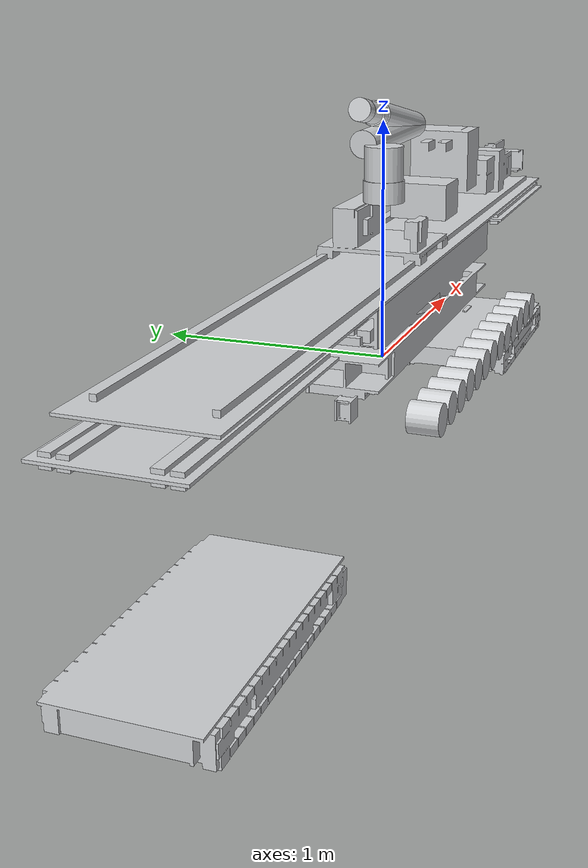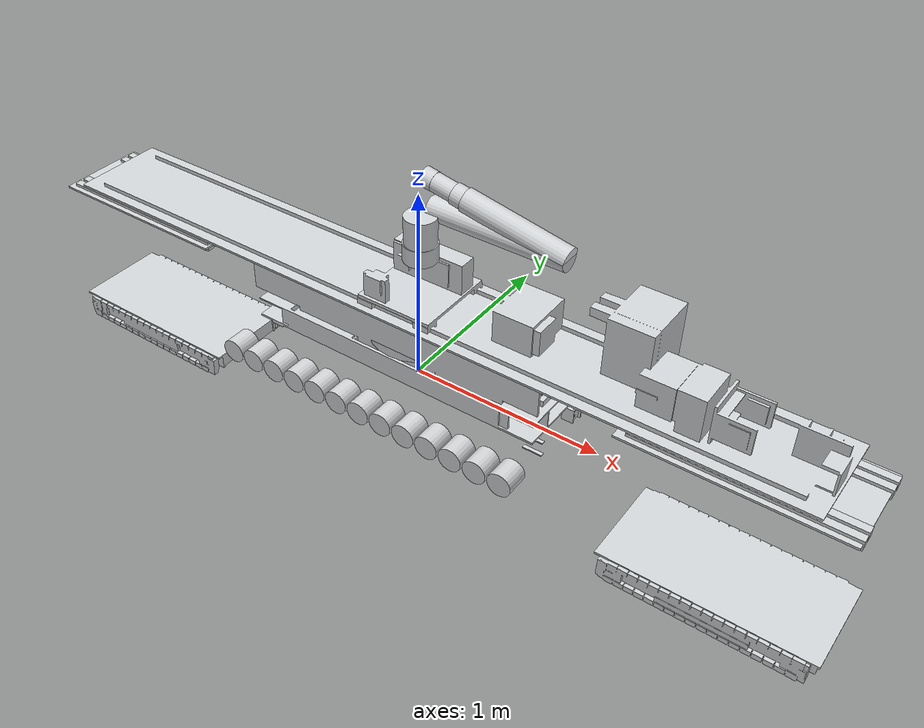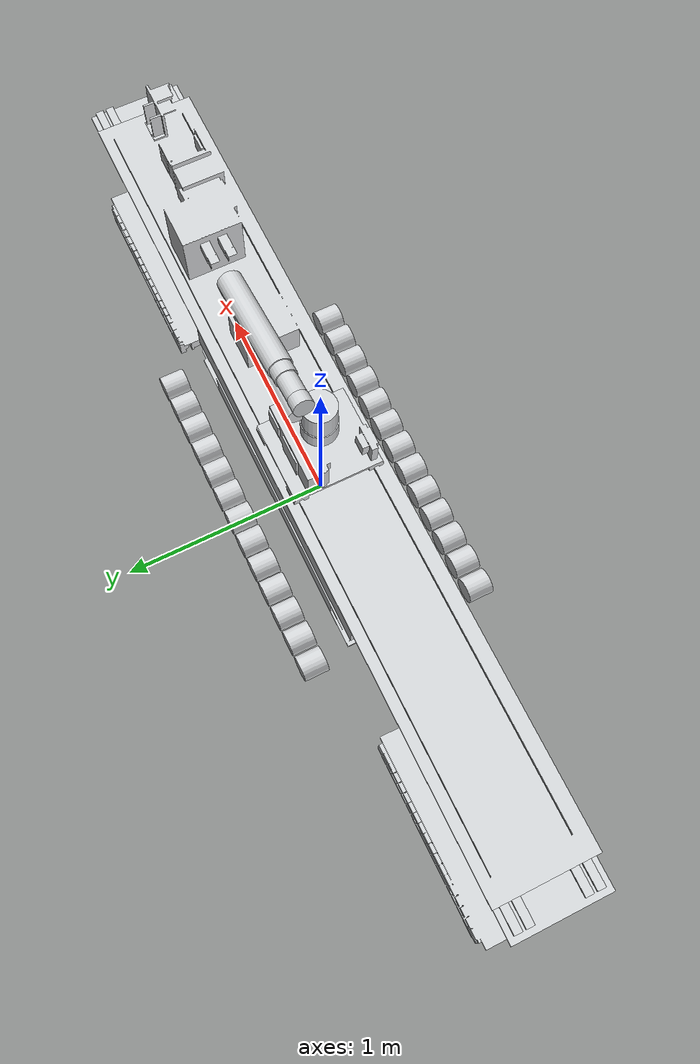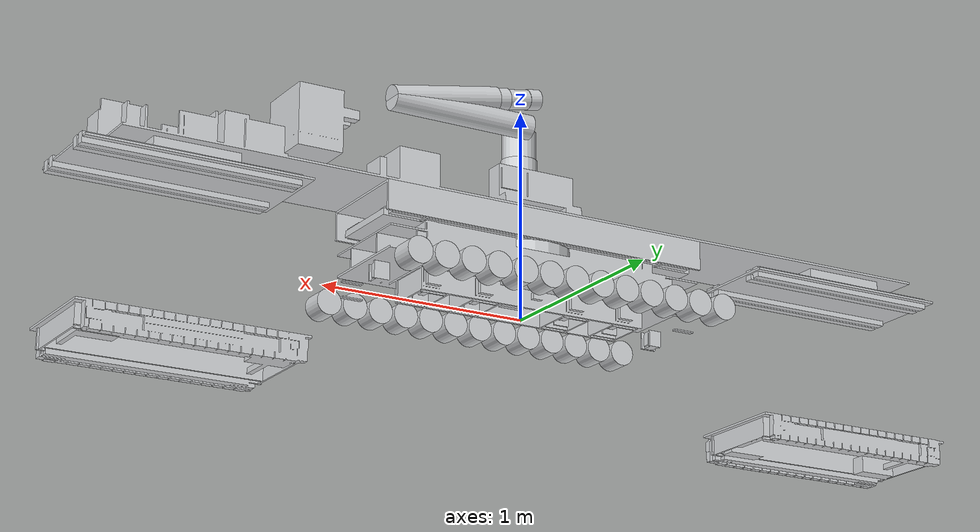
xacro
<?xml version="1.0"?>
<robot xmlns:xacro="http://www.ros.org/wiki/xacro" name="crawler">

  <xacro:include filename="$(find sp_description)/urdf/params.xacro"/>
  <xacro:include filename="$(find sp_description)/urdf/crawler.gazebo.xacro"/>

  <xacro:arg name="arm_fixed" default="true"/>
  <xacro:property name="arm_fixed" value="$(arg arm_fixed)"/>

  <xacro:property name="mesh_dir" value="package://sp_description/meshes"/>

  <!-- ═══════════ 관성 매크로 ═══════════ -->
  <xacro:macro name="box_inertia" params="m x y z ox:=0 oy:=0 oz:=0">
    <inertial>
      <origin xyz="${ox} ${oy} ${oz}"/>
      <mass value="${m}"/>
      <inertia ixx="${m*(y*y+z*z)/12.0}" ixy="0" ixz="0"
               iyy="${m*(x*x+z*z)/12.0}" iyz="0"
               izz="${m*(x*x+y*y)/12.0}"/>
    </inertial>
  </xacro:macro>

  <!-- oz: 링크 원점에서 원통 **중심**까지의 거리. 팔 링크처럼 원점이 관절(끝)에
       있는 경우 반드시 줘야 무게중심이 맞는다. 바퀴·롤러는 원점이 이미 중심이라 0. -->
  <xacro:macro name="cylinder_inertia" params="m r h oz:=0">
    <inertial>
      <origin xyz="0 0 ${oz}"/>
      <mass value="${m}"/>
      <inertia ixx="${m*(3*r*r+h*h)/12.0}" ixy="0" ixz="0"
               iyy="${m*(3*r*r+h*h)/12.0}" iyz="0"
               izz="${m*r*r/2.0}"/>
    </inertial>
  </xacro:macro>

  <!-- 로봇 전체를 **밝은 회색 하나**로 통일한다.
       예전에는 부위별로 색을 나눴는데(강재/고무/FANUC 파랑), 형상 확인에는
       한 색이 오히려 낫다 — 색 경계가 아니라 실제 형상 경계가 보인다. -->
  <material name="light"><color rgba="0.82 0.83 0.84 1"/></material>

  <link name="base_footprint"/>

  <joint name="base_joint" type="fixed">
    <parent link="base_footprint"/>
    <child  link="base_link"/>
    <origin xyz="0 0 ${-wheel_unit_z0}" rpy="0 0 0"/>
  </joint>

  <link name="base_link">
    <visual>
      <geometry><mesh filename="${mesh_dir}/wheel_unit.stl"/></geometry>
      <material name="light"/>
    </visual>
    <!-- 충돌은 바퀴부 몸통 박스 하나. 접지는 구동륜이 맡는다.
         몸통은 통로(695) 안에 들어가고 론지 플랜지 위로 21 mm 떠 있다. -->
    <collision>
      <origin xyz="0 0 ${(wheel_unit_body_z0 + wheel_unit_z1)/2.0}"/>
      <geometry>
        <box size="${2*wheel_unit_x} ${2*wheel_unit_y}
                   ${wheel_unit_z1 - wheel_unit_body_z0}"/>
      </geometry>
    </collision>
    <xacro:box_inertia m="${wheel_unit_mass}" x="${2*wheel_unit_x}"
                       y="${2*wheel_unit_y}" z="${wheel_unit_z1 - wheel_unit_z0}"
                       oz="${(wheel_unit_z0 + wheel_unit_z1)/2.0}"/>
  </link>

  <xacro:macro name="drive_wheel" params="prefix ysign xoff">
    <link name="${prefix}_wheel_link">
      <visual>
        <origin rpy="${pi/2} 0 0"/>
        <geometry><cylinder radius="${wheel_radius}" length="${drive_width}"/></geometry>
        <material name="light"/>
      </visual>
      <collision>
        <origin rpy="${pi/2} 0 0"/>
        <geometry><cylinder radius="${wheel_radius}" length="${drive_width}"/></geometry>
      </collision>
      <xacro:cylinder_inertia m="${wheel_mass}" r="${wheel_radius}" h="${drive_width}"/>
    </link>

    <joint name="${prefix}_wheel_joint" type="continuous">
      <parent link="base_link"/>
      <child  link="${prefix}_wheel_link"/>
      <origin xyz="${xoff} ${ysign * drive_gauge / 2.0} ${axle_z}" rpy="0 0 0"/>
      <axis xyz="0 1 0"/>
    </joint>
  </xacro:macro>

  <xacro:macro name="drive_wheels" params="side ysign i">
    <xacro:if value="${i &lt; drive_wheel_n}">
      <xacro:drive_wheel prefix="${side}${i}" ysign="${ysign}"
                         xoff="${drive_wheel_x0 - i*drive_wheel_dx}"/>
      <xacro:drive_wheels side="${side}" ysign="${ysign}" i="${i+1}"/>
    </xacro:if>
  </xacro:macro>

  <xacro:drive_wheels side="l" ysign="1"  i="0"/>
  <xacro:drive_wheels side="r" ysign="-1" i="0"/>

  <!-- 바 하나 = 좌우 두 장 + 크로스튜브를 묶은 강체 하나.
       `off` 는 링크 원점에서 박스 중심까지의 거리 —
       원점이 좌끝이면 +L/2, 우끝이면 −L/2, 중간핀이면 0. -->
  <xacro:macro name="scissor_bar" params="name blen dy off ty tz">
    <link name="${name}">
      <visual>
        <origin xyz="${off} ${dy} 0"/>
        <geometry><box size="${blen} ${ty} ${tz}"/></geometry>
        <material name="light"/>
      </visual>
      <visual>
        <origin xyz="${off} ${-dy} 0"/>
        <geometry><box size="${blen} ${ty} ${tz}"/></geometry>
        <material name="light"/>
      </visual>
      <!-- 충돌체 없음: 하중을 받지 않는 종동체다. -->
      <xacro:box_inertia m="${scissor_bar_mass}" x="${blen}" y="${2*dy}"
                         z="${tz}" ox="${off}"/>
    </link>
  </xacro:macro>

  <xacro:macro name="scissor_stage" params="ns blen dy dy2 n i ty tz">
    <xacro:if value="${i &lt; n}">
      <!-- 주 체인 바: 짝수단 = A(좌끝 원점), 홀수단 = B(우끝 원점) -->
      <xacro:scissor_bar name="${ns}_m${i}" blen="${blen}" dy="${dy}" ty="${ty}" tz="${tz}"
                         off="${blen/2.0 if i%2==0 else -blen/2.0}"/>
      <joint name="${ns}_m${i}_scissor_joint" type="revolute">
        <parent link="${ns + '_root' if i == 0 else ns + '_m' + str(i-1)}"/>
        <child  link="${ns}_m${i}"/>
        <!-- 부모의 반대쪽 끝핀에 붙는다 (i=0 은 고정핀 그 자리) -->
        <origin xyz="${0 if i == 0 else (blen if i%2==1 else -blen)} 0 0"/>
        <axis xyz="0 ${-1 if i%2==0 else 1} 0"/>
        <limit lower="-0.05" upper="2.7" effort="500" velocity="3.0"/>
        <dynamics damping="0.2" friction="0.0"/>
      </joint>

      <!-- 짝 바: 주 체인 바의 중간핀에서 반대 방향으로 벌어진다.
           ⚠ y 열을 **안쪽(dy2)** 으로 뺀다. 같은 열에 두면 각도가 얕을 때
             교차점에서 두 바가 서로 파고들어 덩어리처럼 보인다. 실제 시저도
             안팎 두 열로 엇갈려 물린다. -->
      <xacro:scissor_bar name="${ns}_p${i}" blen="${blen}" dy="${dy2}" ty="${ty}" tz="${tz}" off="0"/>
      <joint name="${ns}_p${i}_scissor_joint" type="revolute">
        <parent link="${ns}_m${i}"/>
        <child  link="${ns}_p${i}"/>
        <origin xyz="${blen/2.0 if i%2==0 else -blen/2.0} 0 0"/>
        <axis xyz="0 ${1 if i%2==0 else -1} 0"/>
        <limit lower="-0.05" upper="2.7" effort="500" velocity="3.0"/>
        <dynamics damping="0.2" friction="0.0"/>
      </joint>

      <xacro:scissor_stage ns="${ns}" blen="${blen}" dy="${dy}" dy2="${dy2}" n="${n}" i="${i+1}" ty="${ty}" tz="${tz}"/>
    </xacro:if>
  </xacro:macro>

  <!-- 조립체 하나. xyz 는 **고정핀** 위치다 (스택은 여기서 위로 자란다). -->
  <!-- rpy 로 스택을 뒤집을 수 있다. "${pi} 0 0" 이면 아래로 자란다 —
       전후단부처럼 **고정된 윗부분에 매달려 아랫부분을 내리는** 배치에 쓴다. -->
  <xacro:macro name="scissor_stack" params="ns parent xyz blen dy dy2 n ty tz rpy:='0 0 0'">
    <link name="${ns}_root">
      <xacro:box_inertia m="0.05" x="0.03" y="0.03" z="0.03"/>
    </link>
    <joint name="${ns}_root_joint" type="fixed">
      <parent link="${parent}"/>
      <child  link="${ns}_root"/>
      <origin xyz="${xyz}" rpy="${rpy}"/>
    </joint>
    <xacro:scissor_stage ns="${ns}" blen="${blen}" dy="${dy}" dy2="${dy2}" n="${n}" i="0" ty="${ty}" tz="${tz}"/>
  </xacro:macro>

  <link name="body_turn_link">
    <!-- 턴테이블 디스크 -->
    <visual>
      <origin xyz="0 0 ${(body_turn_z0 + body_turn_z1)/2.0}"/>
      <geometry>
        <cylinder radius="${body_turn_r}" length="${body_turn_z1 - body_turn_z0}"/>
      </geometry>
      <material name="light"/>
    </visual>
    <!-- 회전 프레임 — 시저 하단 핀(x ±0.775)을 받는 빔.
         턴테이블 반경 0.24 로는 그 핀들을 받을 수 없어서 필요하다. -->
    <visual>
      <origin xyz="0 0 ${(body_turn_z1 + body_frame_z1)/2.0}"/>
      <geometry>
        <box size="${2*body_frame_x} ${2*body_frame_y} ${body_frame_z1 - body_turn_z1}"/>
      </geometry>
      <material name="light"/>
    </visual>
    <collision>
      <origin xyz="0 0 ${(body_turn_z0 + body_turn_z1)/2.0}"/>
      <geometry>
        <cylinder radius="${body_turn_r}" length="${body_turn_z1 - body_turn_z0}"/>
      </geometry>
    </collision>
    <xacro:box_inertia m="${body_turn_mass + body_frame_mass}"
                       x="${2*body_frame_x}" y="${2*body_frame_y}"
                       z="${body_frame_z1 - body_turn_z0}"
                       oz="${(body_turn_z0 + body_frame_z1)/2.0}"/>
  </link>

  <joint name="body_turn_joint" type="revolute">
    <parent link="base_link"/>
    <child  link="body_turn_link"/>
    <origin xyz="0 0 0" rpy="0 0 0"/>
    <axis xyz="0 0 1"/>
    <limit lower="${-pi}" upper="${pi}" effort="8000" velocity="${turn_vel}"/>
    <dynamics damping="${turn_damping}" friction="${turn_friction}"/>
  </joint>

  <!-- 몸체부(덱) — 메시는 상판 + 리니어 레일이다.
       리니어축·팔·전후단부가 전부 여기에 매달린다. -->
  <link name="body_link">
    <visual>
      <geometry><mesh filename="${mesh_dir}/deck.stl"/></geometry>
      <material name="light"/>
    </visual>
    <collision>
      <origin xyz="0 0 ${(deck_z0 + deck_z1)/2.0}"/>
      <geometry><box size="${2*deck_x} ${2*deck_y} ${deck_z1 - deck_z0}"/></geometry>
    </collision>
    <xacro:box_inertia m="${deck_mass}" x="${2*deck_x}" y="${2*deck_y}"
                       z="${deck_z1 - deck_z0}" oz="${(deck_z0 + deck_z1)/2.0}"/>
  </link>

  <joint name="body_lift_joint" type="prismatic">
    <parent link="body_turn_link"/>
    <child  link="body_link"/>
    <origin xyz="0 0 0" rpy="0 0 0"/>
    <axis xyz="0 0 1"/>
    <limit lower="0" upper="${body_lift_range}" effort="20000" velocity="0.2"/>
    <dynamics damping="2000.0" friction="200.0"/>
  </joint>

  <xacro:scissor_stack ns="body_sc" parent="body_turn_link"
                       xyz="${body_sc_x} 0 ${body_frame_z1}"
                       blen="${body_sc_len}" dy="${body_sc_dy}" dy2="${body_sc_dy2}"
                       n="${body_sc_n}" ty="${body_sc_ty}" tz="${body_sc_tz}"/>

  <!-- ═══════════ 리니어축 캐리지 ═══════════
       링크 원점 = 도면 자세에서의 슬라이더 4개 중심. q=0 이 **행정 중심**이다. -->
  <link name="carriage_link">
    <visual>
      <geometry><mesh filename="${mesh_dir}/carriage.stl"/></geometry>
      <material name="light"/>
    </visual>
    <collision>
      <origin xyz="${carriage_ctr_x - carriage_ref_x} 0
                   ${(carriage_z0 + carriage_z1)/2.0}"/>
      <geometry>
        <box size="${carriage_box_x} ${carriage_box_y} ${carriage_z1 - carriage_z0}"/>
      </geometry>
    </collision>
    <xacro:box_inertia m="${carriage_mass}" x="${carriage_box_x}" y="${carriage_box_y}"
                       z="${carriage_z1 - carriage_z0}"
                       ox="${carriage_ctr_x - carriage_ref_x}"
                       oz="${(carriage_z0 + carriage_z1)/2.0}"/>
  </link>

  <joint name="carriage_joint" type="prismatic">
    <parent link="body_link"/>
    <child  link="carriage_link"/>
    <origin xyz="${rail_center_x} 0 0" rpy="0 0 0"/>
    <axis xyz="1 0 0"/>
    <limit lower="${-rail_travel}" upper="${rail_travel}" effort="4000" velocity="0.5"/>
    <dynamics damping="200.0" friction="20.0"/>
  </joint>

  <xacro:macro name="arm_seg" params="name slen r m rpy:='0 0 0'">
    <link name="${name}">
      <visual>
        <origin xyz="0 0 ${slen/2.0}" rpy="${rpy}"/>
        <geometry><cylinder radius="${r}" length="${slen}"/></geometry>
        <material name="light"/>
      </visual>
      <xacro:if value="${arm_collision}">
        <collision>
          <origin xyz="0 0 ${slen/2.0}" rpy="${rpy}"/>
          <geometry><cylinder radius="${r}" length="${slen}"/></geometry>
        </collision>
      </xacro:if>
      <xacro:cylinder_inertia m="${m}" r="${r}" h="${slen}" oz="${slen/2.0}"/>
    </link>
  </xacro:macro>

  <!-- 팔 관절 하나. arm_fixed 면 **home 각도를 origin 에 구워 넣은 fixed** 로 낸다.
       ⚠ fixed 로 굳히면 /arm_jN 토픽이 사라진다. 자세를 바꾸려면 arm_fixed:=false. -->
  <xacro:macro name="arm_joint" params="name parent child xyz ax home lim eff vel damp fric">
    <xacro:if value="${arm_fixed}">
      <joint name="${name}" type="fixed">
        <parent link="${parent}"/>
        <child  link="${child}"/>
        <origin xyz="${xyz}"
                rpy="${'0 0 ' + str(home) if ax == 'z' else '0 ' + str(home) + ' 0'}"/>
      </joint>
    </xacro:if>
    <xacro:unless value="${arm_fixed}">
      <joint name="${name}" type="revolute">
        <parent link="${parent}"/>
        <child  link="${child}"/>
        <origin xyz="${xyz}"/>
        <axis xyz="${'0 0 1' if ax == 'z' else '0 1 0'}"/>
        <limit lower="${-lim}" upper="${lim}" effort="${eff}" velocity="${vel}"/>
        <dynamics damping="${damp}" friction="${fric}"/>
      </joint>
    </xacro:unless>
  </xacro:macro>

  <!-- 베이스: 캐리지 상면에 고정 -->
  <xacro:arm_seg name="arm_base_link" slen="${arm_base_h}" r="${arm_base_r}"
                 m="${arm_base_mass}"/>
  <joint name="arm_base_joint" type="fixed">
    <parent link="carriage_link"/>
    <child  link="arm_base_link"/>
    <!-- 캐리지 링크 원점은 도면 슬라이더 중심이므로 x 는 0, z 만 올린다 -->
    <origin xyz="0 0 ${arm_mount_z}" rpy="0 0 0"/>
  </joint>

  <xacro:arm_seg name="arm_j1_link" slen="${arm_sh_h}" r="${arm_sh_r}" m="${arm_sh_mass}"/>
  <xacro:arm_joint name="arm_j1_joint" parent="arm_base_link" child="arm_j1_link"
                   xyz="0 0 ${arm_base_h}" ax="z" home="0"
                   lim="${arm_lim_j1}" eff="1500" vel="2.0" damp="20.0" fric="2.0"/>

  <!-- J2 어깨 피치 — 상완 -->
  <xacro:arm_seg name="arm_j2_link" slen="${arm_upper}" r="${arm_link_r}"
                 m="${arm_upper_mass}"/>
  <xacro:arm_joint name="arm_j2_joint" parent="arm_j1_link" child="arm_j2_link"
                   xyz="0 ${arm_sh_y} ${arm_sh_h}" ax="y" home="${arm_home_j2}"
                   lim="${arm_lim_j2}" eff="1500" vel="2.0" damp="20.0" fric="2.0"/>

  <!-- J3 팔꿈치 피치 — 전완 -->
  <xacro:arm_seg name="arm_j3_link" slen="${arm_fore}" r="${arm_link_r}"
                 m="${arm_fore_mass}"/>
  <xacro:arm_joint name="arm_j3_joint" parent="arm_j2_link" child="arm_j3_link"
                   xyz="0 0 ${arm_upper}" ax="y" home="${arm_home_j3}"
                   lim="${arm_lim_j3}" eff="1200" vel="2.0" damp="15.0" fric="1.5"/>

  <!-- J4 전완 롤 -->
  <xacro:arm_seg name="arm_j4_link" slen="${arm_wrist*0.35}" r="${arm_link_r*0.9}"
                 m="${arm_wrist_mass*0.4}"/>
  <xacro:arm_joint name="arm_j4_joint" parent="arm_j3_link" child="arm_j4_link"
                   xyz="0 0 ${arm_fore}" ax="z" home="0"
                   lim="${arm_lim_j4}" eff="600" vel="2.5" damp="8.0" fric="0.8"/>

  <!-- J5 손목 피치 -->
  <xacro:arm_seg name="arm_j5_link" slen="${arm_wrist*0.65}" r="${arm_link_r*0.8}"
                 m="${arm_wrist_mass*0.6}"/>
  <xacro:arm_joint name="arm_j5_joint" parent="arm_j4_link" child="arm_j5_link"
                   xyz="0 0 ${arm_wrist*0.35}" ax="y" home="${arm_home_j5}"
                   lim="${arm_lim_j5}" eff="600" vel="2.5" damp="8.0" fric="0.8"/>

  <!-- J6 플랜지 롤 + 툴 -->
  <link name="arm_tool_link">
    <visual>
      <origin xyz="0 0 0.030"/>
      <geometry><cylinder radius="0.048" length="0.060"/></geometry>
      <material name="light"/>
    </visual>
    <xacro:if value="${arm_collision}">
      <collision>
        <origin xyz="0 0 0.030"/>
        <geometry><cylinder radius="0.048" length="0.060"/></geometry>
      </collision>
    </xacro:if>
    <xacro:cylinder_inertia m="${arm_tool_mass}" r="0.048" h="0.060" oz="0.030"/>
  </link>
  <xacro:arm_joint name="arm_j6_joint" parent="arm_j5_link" child="arm_tool_link"
                   xyz="0 0 ${arm_wrist*0.65}" ax="z" home="0"
                   lim="${arm_lim_j6}" eff="400" vel="3.0" damp="5.0" fric="0.5"/>

  <xacro:macro name="end_unit" params="prefix xsign">

    <!-- ── 윗부분: 몸체부에 매달려 회전만 한다 ── -->
    <link name="${prefix}_upper_link">
      <visual>
        <geometry><mesh filename="${mesh_dir}/${prefix}_upper.stl"/></geometry>
        <material name="light"/>
      </visual>
      <collision>
        <origin xyz="0 0 ${(end_upper_z0 + end_upper_z1)/2.0}"/>
        <geometry>
          <box size="${2*end_upper_x} ${2*end_upper_y} ${end_upper_z1 - end_upper_z0}"/>
        </geometry>
      </collision>
      <xacro:box_inertia m="${end_upper_mass}" x="${2*end_upper_x}" y="${2*end_upper_y}"
                         z="${end_upper_z1 - end_upper_z0}"
                         oz="${(end_upper_z0 + end_upper_z1)/2.0}"/>
    </link>

    <joint name="${prefix}_turn_joint" type="revolute">
      <!-- ⚠ 부모가 **몸체부**다. 몸체부가 돌면 끝단부도 같이 끌려 돈다.
           z 오프셋은 0 이다 — 메시가 도면 z 를 그대로 쓰므로 윗부분이 저절로
           0.384~0.454 에 놓이고 상면이 덱 하면(0.454)과 맞는다. -->
      <parent link="body_link"/>
      <child  link="${prefix}_upper_link"/>
      <origin xyz="${xsign * end_turn_x} 0 0" rpy="0 0 0"/>
      <axis xyz="0 0 1"/>
      <limit lower="${-pi}" upper="${pi}" effort="8000" velocity="${turn_vel}"/>
      <dynamics damping="${turn_damping}" friction="${turn_friction}"/>
    </joint>

    <!-- ── 아랫부분: 시저로 바닥까지 내려간다 ──
         q=0 → 궤도 하면이 통로 바닥. + 로 올린다.
         궤도 하단은 메시 z=0, 바퀴부 접지면은 메시 z=wheel_unit_z0 이므로
         낙차 end_drop 에서 그 8 mm 를 빼야 바닥에 정확히 닿는다. -->
    <link name="${prefix}_lower_link">
      <visual>
        <geometry><mesh filename="${mesh_dir}/${prefix}_lower.stl"/></geometry>
        <material name="light"/>
      </visual>
      <!-- 궤도 **위쪽**만 충돌시킨다. 접지는 아래 롤러가 맡아야 하므로
           롤러 중심(end_axle_z)보다 위에서 시작한다. -->
      <collision>
        <origin xyz="0 0 ${(end_axle_z + 0.01 + end_lower_z1)/2.0}"/>
        <geometry>
          <box size="${2*end_lower_x} ${2*end_lower_y}
                     ${end_lower_z1 - end_axle_z - 0.01}"/>
        </geometry>
      </collision>
      <xacro:box_inertia m="${end_lower_mass}" x="${2*end_lower_x}" y="${2*end_lower_y}"
                         z="${end_lower_z1}" oz="${end_lower_z1/2.0}"/>
    </link>

    <joint name="${prefix}_lift_joint" type="prismatic">
      <parent link="${prefix}_upper_link"/>
      <child  link="${prefix}_lower_link"/>
      <origin xyz="0 0 ${-(end_drop - wheel_unit_z0)}" rpy="0 0 0"/>
      <axis xyz="0 0 1"/>
      <!-- 음수 = 잭업 (params.xacro 의 end_lift_down 참조) -->
      <limit lower="${-end_lift_down}" upper="${end_lift_up}" effort="40000" velocity="0.2"/>
      <dynamics damping="4000.0" friction="400.0"/>
    </joint>

    <xacro:scissor_stack ns="${prefix}_sc" parent="${prefix}_upper_link"
                         xyz="${end_sc_x} 0 ${end_upper_z0}" rpy="${pi} 0 0"
                         blen="${end_sc_len}" dy="${end_sc_dy}" dy2="${end_sc_dy2}"
                         n="${end_sc_n}" ty="${end_sc_ty}" tz="${end_sc_tz}"/>

    <!-- 접지 롤러 — 끝단 궤도를 대신한다. 구동하지 않고 굴러가기만 한다.
         **아랫부분에 붙는다** (윗부분이 아니다 — 바닥에 닿는 것은 아랫부분이다). -->
    <xacro:macro name="end_roller" params="rprefix ysign xoff">
      <link name="${rprefix}_roller_link">
        <collision>
          <origin rpy="${pi/2} 0 0"/>
          <geometry>
            <cylinder radius="${end_wheel_radius}" length="${end_track_width}"/>
          </geometry>
        </collision>
        <xacro:cylinder_inertia m="${wheel_mass}" r="${end_wheel_radius}"
                                h="${end_track_width}"/>
      </link>
      <joint name="${rprefix}_roller_joint" type="continuous">
        <parent link="${prefix}_lower_link"/>
        <child  link="${rprefix}_roller_link"/>
        <origin xyz="${xoff} ${ysign * end_track_gauge / 2.0} ${end_axle_z}"/>
        <axis xyz="0 1 0"/>
      </joint>
    </xacro:macro>

    <xacro:end_roller rprefix="${prefix}_fl" ysign="1"  xoff="${ end_wheel_x}"/>
    <xacro:end_roller rprefix="${prefix}_fr" ysign="-1" xoff="${ end_wheel_x}"/>
    <xacro:end_roller rprefix="${prefix}_bl" ysign="1"  xoff="${-end_wheel_x}"/>
    <xacro:end_roller rprefix="${prefix}_br" ysign="-1" xoff="${-end_wheel_x}"/>
  </xacro:macro>

  <xacro:end_unit prefix="front" xsign="1"/>
  <xacro:end_unit prefix="rear"  xsign="-1"/>

  <link name="imu_link">
    <visual>
      <geometry><box size="0.06 0.06 0.04"/></geometry>
      <material name="light"/>
    </visual>
    <xacro:box_inertia m="0.3" x="0.06" y="0.06" z="0.04"/>
  </link>

  <joint name="imu_joint" type="fixed">
    <parent link="base_link"/>
    <child  link="imu_link"/>
    <origin xyz="${imu_xyz}" rpy="${imu_rpy}"/>
  </joint>

  <!-- ═══════════ Gazebo 플러그인/센서 ═══════════ -->
  <xacro:crawler_gazebo/>

</robot>

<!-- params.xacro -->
<robot xmlns:xacro="http://www.ros.org/wiki/xacro">

  <!-- 블록 도면 실측. 궤간이 여기 묶인다. -->
  <xacro:property name="longi_pitch"        value="0.845"/>
  <xacro:property name="longi_flange_width" value="0.150"/>

  <!-- ═══ 전체 ═══ -->
  <xacro:property name="overall_length" value="4.100"/>
  <xacro:property name="overall_width"  value="0.543"/>   <!-- 끝단 궤도 바깥 -->
  <!-- ⚠ 0.841 은 **도면 팔 덩어리** 기준이다. 팔을 6축으로 세운 뒤로는
       접은 자세에서 z 1.052 까지 올라간다 (CRX 숄더가 캐리지 상면 0.676 위
       0.23 m 에 있어서 구조적으로 그렇다). 도면값은 치수 기록으로 남겨 둔다. -->
  <xacro:property name="overall_height" value="0.841"/>   <!-- 도면 팔 덩어리 기준 -->

  <!-- ═══ 바퀴부 (base_link) — 론지 위 주행 ═══
       메시 좌표(z=0 = 도면 공통 접지면) 기준 값들. -->
  <xacro:property name="wheel_unit_x"   value="0.826"/>   <!-- ±X (체인 제외 차체) -->
  <xacro:property name="wheel_unit_y"   value="0.250"/>
  <xacro:property name="wheel_unit_z0"  value="0.008"/>   <!-- 접지면 = 축 - 반경 -->
  <xacro:property name="wheel_unit_body_z0" value="0.029"/>  <!-- 차체 하면 -->
  <xacro:property name="wheel_unit_z1"  value="0.454"/>   <!-- 상단 -->
  <xacro:property name="axle_z"         value="0.0689"/>  <!-- 스프라켓 축 높이 -->
  <xacro:property name="wheel_radius"   value="${axle_z - wheel_unit_z0}"/>

  <!-- 참고: 도면 체인은 폭 32.4 mm / 궤간 421.5 mm 였다 (쓰지 않는다) -->
  <xacro:property name="chain_gauge"    value="0.4215"/>
  <xacro:property name="chain_width"    value="0.0324"/>

  <!-- ═══ 구동륜 — 론지 위 ═══
       궤간은 **론지 pitch 에 고정**. 폭은 플랜지(150) 안에 들어가야 한다. -->
  <xacro:property name="drive_gauge"    value="${longi_pitch}"/>
  <xacro:property name="drive_width"    value="0.120"/>            <!-- 여유 각 15 mm -->
  <xacro:property name="drive_wheel_n"  value="13"/>      <!-- 측당 -->
  <xacro:property name="drive_wheel_x0" value="0.780"/>   <!-- 최외곽 |x| -->
  <xacro:property name="drive_wheel_dx" value="0.130"/>   <!-- 간격 = 직경 + 8.2 mm -->

  <xacro:property name="turn_p"       value="2000"/>
  <xacro:property name="turn_i"       value="60"/>
  <xacro:property name="turn_d"       value="2500"/>
  <xacro:property name="turn_cmd_max" value="700"/>    <!-- N·m. 낮출수록 느리고 얌전 -->

  <xacro:property name="turn_damping"  value="300.0"/>
  <xacro:property name="turn_friction" value="15.0"/>

  <!-- ⚠ **gz 는 이 값을 강제하지 않는다.** 0.15 로 낮춰 두고 실제 각속도를 재 보니
       0.41 rad/s 로 돌았다. 회전을 진짜로 늦추려면 **지령을 램프**로 올려야 한다
       (patrol.py 참조). 여기 값은 문서용으로만 남긴다. -->
  <xacro:property name="turn_vel"      value="0.5"/>    <!-- rad/s (강제되지 않음) -->

  <xacro:property name="body_turn_p"       value="2000"/>
  <xacro:property name="body_turn_i"       value="60"/>
  <xacro:property name="body_turn_d"       value="2500"/>
  <xacro:property name="body_turn_cmd_max" value="700"/>

  <!-- ═══ 끝단부 — 바닥 주행 ═══
       회전부(턴테이블) Ø400 이 회전축이고, 그 아래 무한궤도가 바닥에 닿는다. -->
  <xacro:property name="end_turn_x"     value="1.690"/>   <!-- = 2 x longi_pitch -->

  <xacro:property name="end_track_gauge" value="0.4660"/> <!-- 끝단 체인 중심 간격 -->
  <xacro:property name="end_track_width" value="0.0769"/>
  <xacro:property name="end_axle_z"     value="0.0629"/>
  <xacro:property name="end_wheel_radius" value="${end_axle_z}"/>
  <xacro:property name="end_wheel_x"    value="0.38"/>    <!-- 회전축에서 ±, 접지 롤러 -->
  <!-- 끝단부 전체 높이. 아래 상·하 분리 이후로는 end_upper_z1 이 같은 값을 갖는다.
       도면 치수 기록으로 남겨 둔다. -->
  <xacro:property name="end_unit_z1"    value="0.454"/>   <!-- 회전부 상면 -->

  <xacro:property name="end_upper_z0"   value="0.384"/>   <!-- 윗부분 하면 = 시저 상단 -->
  <xacro:property name="end_upper_z1"   value="0.454"/>   <!-- 윗부분 상면 = 덱 하면 -->
  <xacro:property name="end_upper_x"    value="0.520"/>   <!-- ±, 윗부분 길이/2 -->
  <xacro:property name="end_upper_y"    value="0.240"/>
  <xacro:property name="end_lower_z1"   value="0.130"/>   <!-- 아랫부분(궤도) 상면 -->
  <xacro:property name="end_lower_x"    value="0.525"/>
  <xacro:property name="end_lower_y"    value="0.270"/>

  <!-- **론지 상면 ↔ 바닥 낙차.** 끝단부는 이만큼 내려가야 바닥에 닿는다.
       블록 도면 실측: 론지 플랜지 상면 0.520, 바닥판 상면 0.070. -->
  <xacro:property name="end_drop"       value="0.450"/>
  <xacro:property name="block_girder_top" value="0.660"/>   <!-- 블록 내부 최고 거더 보강대 상면 -->

  <xacro:property name="end_lift_clear" value="${block_girder_top - 0.070 + 0.05}"/>
  <xacro:property name="end_lift_up"    value="${end_lift_clear + 0.02}"/>
  <!-- **음수 행정 = 잭업.** 전후단부가 통로 바닥에 닿은 상태에서 더 밀어내리면
       바닥이 막으니 반력으로 **로봇 전체가 뜬다** — 바퀴부가 론지에서 떨어진다.
       그래야 바퀴부를 론지와 수직으로 돌릴 수 있다 (횡단 주행의 전제).
       0.05 면 바퀴가 플랜지를 넘고, 0.08 까지 열어 여유를 둔다. -->
  <xacro:property name="end_lift_down"  value="0.080"/>

  <xacro:property name="scissor_bar_mass" value="0.6"/>    <!-- 종동체. 두께는 조립체별 -->

  <xacro:property name="body_sc_n"    value="2"/>
  <xacro:property name="body_sc_len"  value="1.550"/>   <!-- 바퀴부 앞뒤 길이에 맞춤 -->
  <xacro:property name="body_sc_dy"   value="0.185"/>   <!-- 주 체인 바의 y 열 -->
  <xacro:property name="body_sc_dy2"  value="0.125"/>   <!-- 짝 바는 안쪽 열 (아래 ⚠) -->
  <xacro:property name="body_sc_ext0" value="0.110"/>   <!-- q=0 에서 접힌 높이 -->
  <xacro:property name="body_sc_x"    value="-0.775"/>  <!-- 고정핀 x -->
  <xacro:property name="body_sc_ty"   value="0.050"/>   <!-- 바 두께 (y) -->
  <xacro:property name="body_sc_tz"   value="0.045"/>   <!-- 바 두께 (z). 접힘 55 mm 보다 얇아야 -->

  <xacro:property name="end_sc_n"      value="2"/>
  <xacro:property name="end_sc_len"    value="1.000"/>   <!-- 유닛 앞뒤 길이에 맞춤 -->
  <xacro:property name="end_sc_dy"     value="0.190"/>   <!-- 주 체인 바의 y 열 -->
  <xacro:property name="end_sc_dy2"    value="0.135"/>   <!-- 짝 바는 안쪽 열 -->
  <xacro:property name="end_sc_ty"     value="0.040"/>   <!-- 큰 시저라 바도 굵다 -->
  <xacro:property name="end_sc_tz"     value="0.050"/>
  <xacro:property name="end_sc_ext_hi" value="0.696"/>   <!-- q=0 에서 펼친 높이 -->
  <xacro:property name="end_sc_x"      value="-0.483"/>  <!-- 고정핀 x (유닛 중앙 정렬) -->

  <xacro:property name="sc_i"          value="0"/>
  <!-- 몸체부 시저 (바 1.55 m — 관절축 관성 약 0.48, 전후단부보다도 크다) -->
  <xacro:property name="sc_body_p"     value="16000"/>
  <xacro:property name="sc_body_d"     value="110"/>
  <xacro:property name="sc_body_cmd"   value="500"/>
  <!-- 전후단부 시저 (바 1.0 m) -->
  <xacro:property name="sc_end_p"      value="8000"/>
  <xacro:property name="sc_end_d"      value="52"/>
  <xacro:property name="sc_end_cmd"    value="400"/>

  <!-- ═══ 몸체부 (바퀴부 위, 상하·회전) ═══
       메시는 상판+레일이고, 리니어축·팔·전후단부가 전부 여기 매달린다. -->
  <xacro:property name="deck_x"         value="2.050"/>
  <xacro:property name="deck_y"         value="0.250"/>
  <xacro:property name="deck_z0"        value="0.454"/>
  <xacro:property name="deck_z1"        value="0.486"/>   <!-- 레일 상면 -->
  <xacro:property name="body_lift_range" value="0.15"/>   <!-- 몸체부 상하 행정 -->

       ⚠ 시저를 바퀴부 길이(1.65 m)에 맞춰 키우면 **하단 핀이 x ±0.775 로 나간다.**
         턴테이블(Ø480, 반경 0.24)이 그걸 받을 수 없으므로 그 위에 **회전 프레임**
         (빔)을 얹고 시저 핀을 거기에 박는다. 프레임은 턴테이블과 한 몸이라
         /body_turn 을 돌리면 시저·덱과 함께 돈다.

         매립 깊이가 120 → 200 mm 로 깊어진다 (바퀴부 몸통 0.029~0.454 안):
             턴테이블      0.254 ~ 0.314   (60)
             회전 프레임    0.314 ~ 0.344   (30)
             시저(접힘)     0.344 ~ 0.454   (110)  → ext(q) = 0.110 + q -->
  <xacro:property name="body_turn_z1"   value="0.314"/>   <!-- 턴테이블 상면 -->
  <xacro:property name="body_turn_z0"   value="0.254"/>   <!-- 턴테이블 하면 -->
  <xacro:property name="body_turn_r"    value="0.240"/>   <!-- 턴테이블 반경 (Ø480) -->
  <xacro:property name="body_turn_mass" value="30.0"/>
  <!-- 회전 프레임 — 시저 하단 핀을 받는 빔. 턴테이블과 한 링크다. -->
  <xacro:property name="body_frame_z1"  value="0.344"/>   <!-- 프레임 상면 = 시저 하단 -->
  <xacro:property name="body_frame_x"   value="0.800"/>
  <xacro:property name="body_frame_y"   value="0.180"/>
  <xacro:property name="body_frame_mass" value="25.0"/>

  <!-- ═══ 리니어축 (THK HSR25) ═══
       레일 x −1.940 ~ +1.960 (3.900 m), 슬라이더 4개 span 0.400
       → 행정 3.500 m, 중심 x = +0.010 에서 ±1.750 -->
  <xacro:property name="rail_center_x"  value="0.010"/>
  <xacro:property name="rail_travel"    value="1.750"/>
  <xacro:property name="carriage_ref_x" value="1.760"/>   <!-- 도면 슬라이더 중심 = 메시 원점 -->
  <xacro:property name="carriage_box_x" value="0.502"/>
  <xacro:property name="carriage_box_y" value="0.440"/>
  <xacro:property name="carriage_ctr_x" value="1.796"/>
  <xacro:property name="carriage_z0"    value="0.469"/>
  <xacro:property name="carriage_z1"    value="0.676"/>

  <xacro:property name="arm_mount_z"  value="0.676"/>   <!-- 캐리지 상면 = 팔 베이스 -->
  <xacro:property name="arm_base_h"   value="0.090"/>   <!-- 베이스 원통 높이 -->
  <xacro:property name="arm_base_r"   value="0.085"/>
  <xacro:property name="arm_sh_h"     value="0.140"/>   <!-- J1 위 숄더 하우징 -->
  <xacro:property name="arm_sh_r"     value="0.080"/>
  <xacro:property name="arm_sh_y"     value="0.090"/>   <!-- 숄더 옆으로 물리는 오프셋 -->
  <xacro:property name="arm_upper"    value="0.710"/>
  <xacro:property name="arm_fore"     value="0.540"/>
  <xacro:property name="arm_wrist"    value="0.168"/>   <!-- J5 → 플랜지 -->
  <xacro:property name="arm_link_r"   value="0.058"/>   <!-- 팔 원통 반경 -->

  <!-- 기본 자세 = **접은 자세**. 관절값 0 은 팔이 곧게 선 자세(도달 2.3 m)라
       주행 중에 쓸 수 없다. 제어기 initial_position 으로 접어 둔다. -->
  <!-- 상완을 수평으로 눕히고(J2 90°) 전완을 그 위로 되접는다(J3 -169°).
       실측 포락: z 0.906~1.052, x +0.010~+0.720 — 블록 내부(5.18 m)에 여유롭다. -->
  <xacro:property name="arm_home_j2"  value="1.5708"/>
  <xacro:property name="arm_home_j3"  value="-2.95"/>
  <xacro:property name="arm_home_j5"  value="0.0"/>

  <!-- 관절 한계 (CRX-20iA/L 공개 사양) -->
  <xacro:property name="arm_lim_j1"   value="3.1416"/>
  <xacro:property name="arm_lim_j2"   value="3.1416"/>
  <xacro:property name="arm_lim_j3"   value="4.7124"/>
  <xacro:property name="arm_lim_j4"   value="3.3161"/>
  <xacro:property name="arm_lim_j5"   value="3.1416"/>
  <xacro:property name="arm_lim_j6"   value="3.9270"/>

  <!-- 팔 링크에 충돌체를 달지 여부. 이 저장소의 목적(주행 드리프트)에는 팔이
       **캐리지 위 질량**으로만 관여하므로 꺼도 결과가 바뀌지 않는다.
       실측 이득은 작다 — 실시간 계수 0.15(켬) 대 0.17(끔). 물리적으로 옳은
       쪽을 기본으로 둔다. 분사 궤적을 길게 돌려 속도가 급하면 끌 것. -->
  <xacro:property name="arm_collision" value="true"/>

  <xacro:property name="arm_p"        value="4000"/>
  <xacro:property name="arm_i"        value="10"/>
  <xacro:property name="arm_d"        value="400"/>
  <xacro:property name="arm_cmd_max"  value="1500"/>

  <!-- ═══ 질량 ═══
       ⚠ 전부 가정치다. 도면에 재질 정보가 없어 CAD 체적으로만 추정했다.
         질량은 드리프트 자체보다 **가감속 응답·미끄러짐**에 영향을 준다. -->
  <xacro:property name="wheel_unit_mass" value="150.0"/>
  <!-- 끝단부 80 kg 을 상·하로 나눈다. 궤도·롤러가 있는 아랫부분이 무겁다.
       ⚠ 배분은 가정치다 (도면에 재질이 없다). 합은 예전 end_unit_mass 와 같게 뒀다. -->
  <xacro:property name="end_upper_mass"  value="25.0"/>
  <xacro:property name="end_lower_mass"  value="55.0"/>
  <xacro:property name="deck_mass"       value="60.0"/>
  <xacro:property name="carriage_mass"   value="30.0"/>
  <!-- 팔 100 kg 을 6축 링크로 나눈다 (CRX-20iA/L 본체 ~75 kg + 툴·케이블).
       ⚠ 배분은 가정치다. 합은 예전 arm_mass 와 같게 뒀다 — 주행 드리프트에는
         팔의 총질량과 무게중심 높이만 관여한다. -->
  <xacro:property name="arm_base_mass"  value="25.0"/>
  <xacro:property name="arm_sh_mass"    value="15.0"/>
  <xacro:property name="arm_upper_mass" value="25.0"/>
  <xacro:property name="arm_fore_mass"  value="18.0"/>
  <xacro:property name="arm_wrist_mass" value="12.0"/>
  <xacro:property name="arm_tool_mass"  value="5.0"/>
  <xacro:property name="wheel_mass"      value="3.0"/>

  <xacro:property name="spawn_z_on_longi" value="0.53"/>

  <!-- ═══ 센서 장착 ═══ -->
  <xacro:property name="imu_xyz" value="0.0 0.0 ${wheel_unit_z1 - 0.03}"/>
  <xacro:property name="imu_rpy" value="0.0 0.0 0.0"/>
  <xacro:property name="imu_rate" value="200"/>   <!-- Hz -->

  <!-- 자이로 [rad/s] -->
  <xacro:property name="gyro_noise_stddev"      value="0.0003"/>
  <xacro:property name="gyro_bias_mean"         value="0.0000075"/>
  <xacro:property name="gyro_bias_stddev"       value="0.0008"/>
  <xacro:property name="gyro_dyn_bias_stddev"   value="0.00002"/>
  <xacro:property name="gyro_dyn_bias_tau"      value="400.0"/>
  <!-- 가속도계 [m/s^2] -->
  <xacro:property name="accel_noise_stddev"     value="0.0017"/>
  <xacro:property name="accel_bias_mean"        value="0.1"/>
  <xacro:property name="accel_bias_stddev"      value="0.001"/>
  <xacro:property name="accel_dyn_bias_stddev"  value="0.001"/>
  <xacro:property name="accel_dyn_bias_tau"     value="300.0"/>

  <!-- ═══ 오도메트리 ═══ -->
  <xacro:property name="odom_rate" value="50"/>   <!-- Hz -->

</robot>
